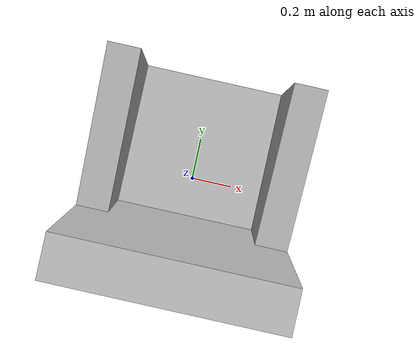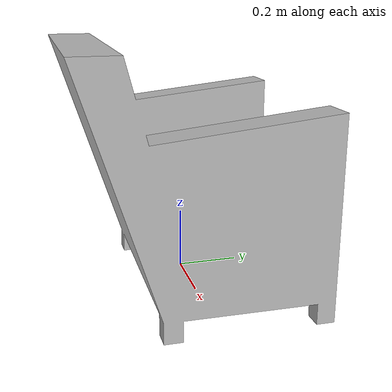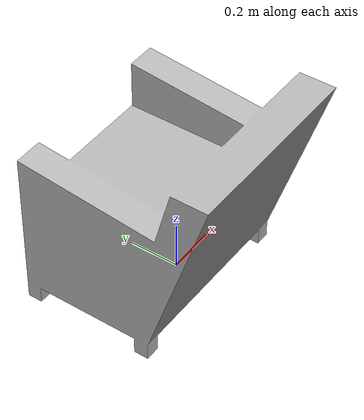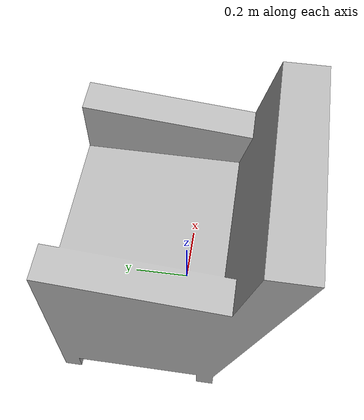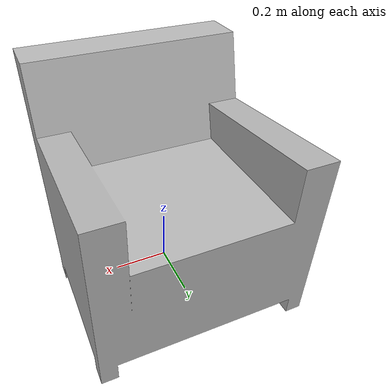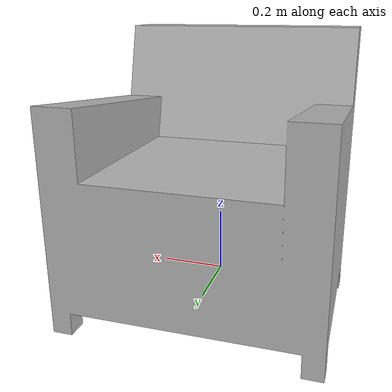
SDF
<sdf version="1.4">
  <model name="lazy chair">
    <static>1</static>
    <link name="link">
      <collision name="colision">
        <pose>0 0 0 0 0 0</pose>
        <geometry>
          <mesh>
            <uri>model://lazy_chair/meshes/lazy_chair.min.dae</uri>
            <scale> 1 1 1 </scale>
          </mesh>
        </geometry>
        <surface>
          <bounce />
          <friction>
            <ode />
          </friction>
          <contact>
            <ode />
          </contact>
        </surface>
      </collision>

      <visual name="visual">
        <pose>0 0 0 0 0 0</pose>
        <geometry>
          <mesh>
            <uri>model://lazy_chair/meshes/lazy_chair.dae</uri>
            <scale> 1 1 1 </scale>
          </mesh>
        </geometry>
      </visual>

      <velocity_decay>
        <linear>0.000000</linear>
        <angular>0.000000</angular>
      </velocity_decay>
      <self_collide>0</self_collide>
      <kinematic>0</kinematic>
      <gravity>1</gravity>
    </link>
  </model>
</sdf>
